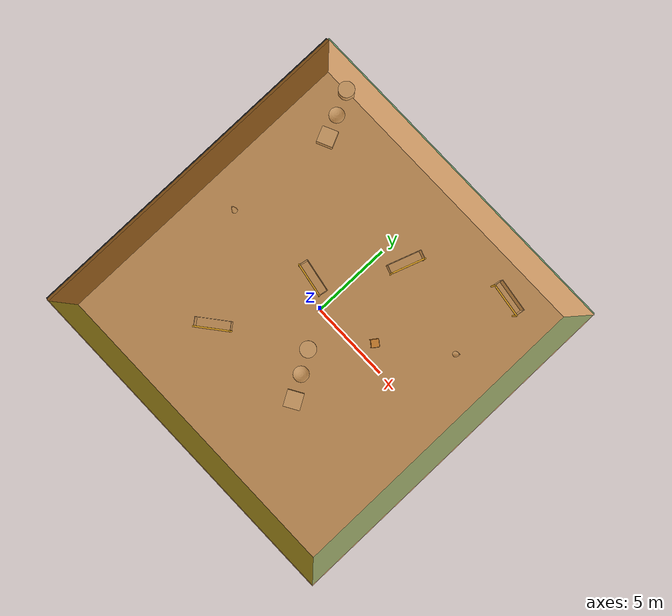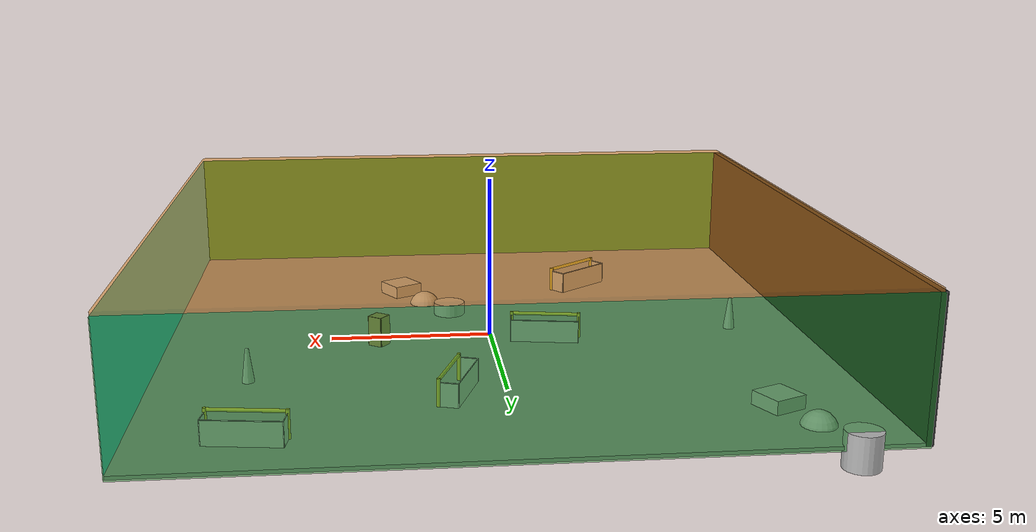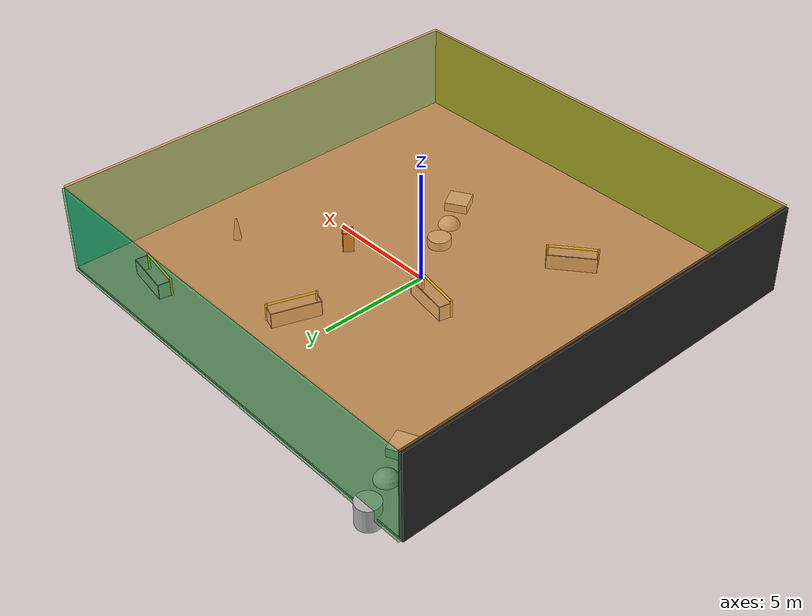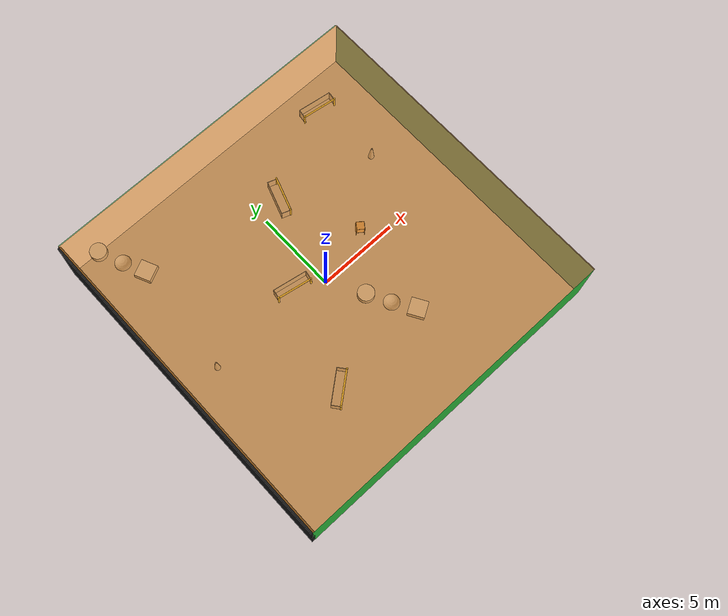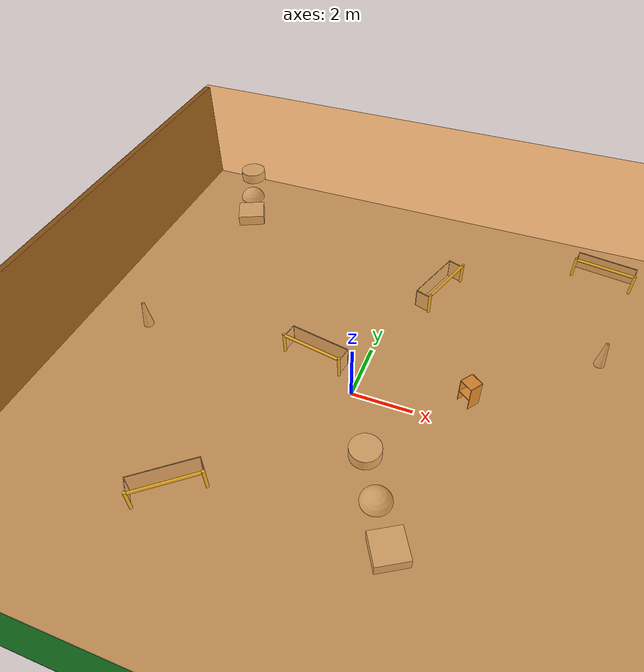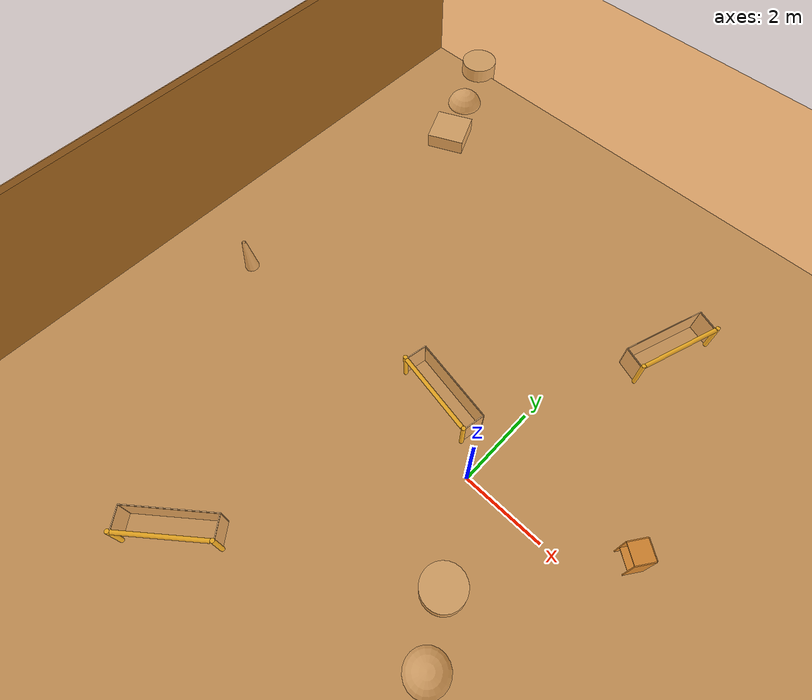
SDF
<sdf version="1.4">
 <world name="default">
  <physics type="ode">
   <max_step_size>0.001</max_step_size>
   <real_time_factor>1</real_time_factor>
   <real_time_update_rate>1000</real_time_update_rate>
   <gravity>0 0 -9.8</gravity>
  </physics>
  <scene><ambient>0.4 0.4 0.4 1</ambient><background>0.7 0.7 0.7 1</background><shadows>1</shadows></scene>
  <model name="Surrounding">
   <static>1</static>
   <link name="Ceiling">
    <collision name="Ceiling_Collision"><geometry><box><size>20 20 0.1</size></box></geometry></collision>
    <visual name="Ceiling_Visual">
     <geometry><box><size>20 20 0.1</size></box></geometry>
     <material>
      <script>
       <uri>file://media/materials/scripts/gazebo.material</uri>
       <name>Gazebo/OrangeTransparent</name>
      </script>
     </material>
    </visual>
    <pose>0 0 4.05 0 0 0</pose>
   </link>
   <link name="Wall_South">
    <collision name="Wall_South_Collision">
     <geometry><box><size>20 0 4</size></box></geometry>
     <pose>0 0 2 0 -0 0</pose>
    </collision>
    <visual name="Wall_South_Visual">
     <pose>0 0 2 0 -0 0</pose>
     <geometry><box><size>20 0 4</size></box></geometry>
     <material>
      <script><uri>file://media/materials/scripts/gazebo.material</uri><name>Gazebo/Green</name></script>
     </material>
    </visual>
    <velocity_decay><linear>0</linear><angular>0</angular></velocity_decay>
    <pose>0 -10 0 0 -0 0</pose>
   </link>
   <link name="Wall_East">
    <collision name="Wall_21_Collision">
     <geometry><box><size>20 0 4</size></box></geometry>
     <pose>0 0 2 0 -0 0</pose>
    </collision>
    <visual name="Wall_21_Visual">
     <pose>0 0 2 0 -0 0</pose>
     <geometry><box><size>20 0 4</size></box></geometry>
     <material>
      <script>
       <uri>file://media/materials/scripts/gazebo.material</uri>
       <name>Gazebo/TurquoiseGlowOutline</name>
      </script>
     </material>
    </visual>
    <velocity_decay><linear>0</linear><angular>0</angular></velocity_decay>
    <pose>10 0 0 0 -0 1.5708</pose>
   </link>
   <link name="Wall_North">
    <collision name="Wall_22_Collision">
     <geometry><box><size>20 0.2 4</size></box></geometry>
     <pose>0 0 2 0 -0 0</pose>
    </collision>
    <visual name="Wall_22_Visual">
     <pose>0 0 2 0 -0 0</pose>
     <geometry><box><size>20 0.2 4</size></box></geometry>
     <material>
      <script><uri>file://media/materials/scripts/gazebo.material</uri><name>Gazebo/GreenTransparent</name></script>
     </material>
    </visual>
    <velocity_decay><linear>0</linear><angular>0</angular></velocity_decay>
    <pose>0 10 0 0 -0 0</pose>
   </link>
   <link name="Wall_West">
    <collision name="Wall_23_Collision">
     <geometry><box><size>20 0.2 4</size></box></geometry>
     <pose>0 0 2 0 -0 0</pose>
    </collision>
    <visual name="Wall_23_Visual">
     <pose>0 0 2 0 -0 0</pose>
     <geometry><box><size>20 0.2 4</size></box></geometry>
     <material>
      <script><uri>file://media/materials/scripts/gazebo.material</uri><name>Gazebo/Black</name></script>
     </material>
    </visual>
    <velocity_decay><linear>0</linear><angular>0</angular></velocity_decay>
    <pose>-10 0 0 0 0 -1.5708</pose>
   </link>
   <link name="Ground_link">
    <collision name="collision">
     <pose>0 0 .05 0 -0 0</pose>
     <geometry><box><size>20 20 0.1</size></box></geometry>
    </collision>
    <visual name="visual">
     <pose>0 0 .05 0 -0 0</pose>
     <geometry><box><size>20 20 0.1</size></box></geometry>
     <material>
      <script><uri>file://media/materials/scripts/gazebo.material</uri><name>Gazebo/Grey</name></script>
     </material>
    </visual>
   </link>
   <static>1</static>
  </model>
  <spherical_coordinates>
   <surface_model>EARTH_WGS84</surface_model>
   <latitude_deg>0</latitude_deg>
   <longitude_deg>0</longitude_deg>
   <elevation>0</elevation>
   <heading_deg>0</heading_deg>
  </spherical_coordinates>
  <light name="lightball_0" type="diffuse">
   <diffuse>0.8 0.8 0.8 1</diffuse>
   <specular>0.2 0.2 0.2 1</specular>
   <attenuation>
    <range>100</range>
    <constant>0.7</constant>
    <linear>0.01</linear>
    <quadratic>0.001</quadratic>
   </attenuation>
   <direction>-0.5 0.1 -0.9</direction>
   <pose>-5.15427149855 0.783007243222 2.64606237204 0 0 0</pose>
  </light>
  <light name="lightball_1" type="diffuse">
   <diffuse>0.8 0.8 0.8 1</diffuse>
   <specular>0.2 0.2 0.2 1</specular>
   <attenuation>
    <range>100</range>
    <constant>0.7</constant>
    <linear>0.01</linear>
    <quadratic>0.001</quadratic>
   </attenuation>
   <direction>-0.5 0.1 -0.9</direction>
   <pose>5.03001257521 1.97703405337 1.89163323363 0 0 0</pose>
  </light>
  <include>
   <uri>model://construction_cone</uri>
   <pose>-7.67934652258 0.370680376103 0 0 0 0.679798559605</pose>
  </include>
  <include>
   <uri>model://textured_shapes</uri>
   <pose>-7.67203705195 8.59558673347 0 0 0 0.431972088999</pose>
  </include>
  <include>
   <uri>model://robocup_3Dsim_goal</uri>
   <pose>-3.46225033624 -5.23286526392 0 0 0 2.24482969159</pose>
  </include>
  <include>
   <uri>model://robocup_3Dsim_goal</uri>
   <pose>-1.66747315827 0.703136083827 0 0 0 1.39178311037</pose>
  </include>
  <include>
   <uri>model://textured_shapes</uri>
   <pose>1.92894667329 -3.34721665666 0 0 0 0.535525591612</pose>
  </include>
  <include>
   <uri>model://robocup_3Dsim_goal</uri>
   <pose>1.64948065237 5.36850000156 0 0 0 2.80754054784</pose>
  </include>
  <include><uri>model://cabinet</uri><pose>3.51524515372 0.939526564925 0 0 0 0.943822887712</pose></include>
  <include>
   <uri>model://construction_cone</uri>
   <pose>7.23067843594 3.9432200789 0 0 0 0.5931486725</pose>
  </include>
  <include>
   <uri>model://robocup_3Dsim_goal</uri>
   <pose>6.87906698325 8.03130607498 0 0 0 1.42501781149</pose>
  </include>
 </world>
</sdf>

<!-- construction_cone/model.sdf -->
<sdf version="1.5">
  <model name="Construction Cone">
    <link name="link">
      <collision name="collision">
        <geometry>
          <mesh>
            <scale>10 10 10</scale>
            <uri>file://isr-testbed/construction_cone/meshes/construction_cone.dae</uri>
          </mesh>
        </geometry>
      </collision>
      <visual name="visual">
        <geometry>
          <mesh>
            <scale>10 10 10</scale>
            <uri>file://isr-testbed/construction_cone/meshes/construction_cone.dae</uri>
          </mesh>
        </geometry>
      </visual>
    </link>
  </model>
</sdf>

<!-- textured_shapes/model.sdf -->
<sdf version="1.6">
  <model name="textured_shapes">
    <pose>0 0 0.5 0 0 0</pose>
    <link name="box">
      <pose>0 -1.5 0 0 0 0</pose>
      <collision name="collision">
        <geometry>
          <box>
            <size>1 1 1</size>
          </box>
        </geometry>
      </collision>
      <visual name="visual">
        <geometry>
          <box>
            <size>1 1 1</size>
          </box>
        </geometry>
        <material>
          <script>
            <uri>model://../model_source/models/textured_shapes/materials/scripts</uri>
            <uri>model://../model_source/models/textured_shapes/materials/textures</uri>
            <name>TexturedShape/Squares</name>
          </script>
        </material>
      </visual>
    </link>
    <link name="sphere">
      <collision name="collision">
        <geometry>
          <sphere>
            <radius>0.5</radius>
          </sphere>
        </geometry>
      </collision>
      <visual name="visual">
        <geometry>
          <sphere>
            <radius>0.5</radius>
          </sphere>
        </geometry>
        <material>
          <script>
            <uri>model://../model_source/models/textured_shapes/materials/scripts</uri>
            <uri>model://../model_source/models/textured_shapes/materials/textures</uri>
            <name>TexturedShape/Squares</name>
          </script>
        </material>
      </visual>
    </link>
    <link name="cylinder">
      <pose>0 1.5 0 0 0 0</pose>
      <collision name="collision">
        <geometry>
          <cylinder>
            <radius>0.5</radius>
            <length>1</length>
          </cylinder>
        </geometry>
      </collision>
      <visual name="visual">
        <geometry>
          <cylinder>
            <radius>0.5</radius>
            <length>1</length>
          </cylinder>
        </geometry>
        <material>
          <script>
            <uri>model://../model_source/models/textured_shapes/materials/scripts</uri>
            <uri>model://../model_source/models/textured_shapes/materials/textures</uri>
            <name>TexturedShape/Squares</name>
          </script>
        </material>
      </visual>
    </link>
  </model>
</sdf>

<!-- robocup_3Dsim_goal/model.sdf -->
<sdf version="1.5">
  <model name="robocup_3d_goal">
    <static>true</static>
    <link name="left_post">
      <pose>0 1.05 0.45 0 0 0</pose>
      <collision name="collision">
        <geometry>
          <cylinder>
            <radius>0.05</radius>
            <length>0.9</length>
          </cylinder>
        </geometry>
      </collision>
      <visual name="visual">
        <geometry>
          <cylinder>
            <radius>0.05</radius>
            <length>0.9</length>
          </cylinder>
        </geometry>
        <material>
          <script>
            <uri>file://media/materials/scripts/gazebo.material</uri>
            <name>Gazebo/ZincYellow</name>
          </script>
        </material>
      </visual>
    </link>
    <link name="left_support_horiz_lower">
      <pose>0.30 1.05 0.01 0 0 0</pose>
      <collision name="collision">
        <geometry>
          <box>
            <size>0.50 0.02 0.02</size>
          </box>
        </geometry>
      </collision>
      <visual name="visual">
        <geometry>
          <box>
            <size>0.50 0.02 0.02</size>
          </box>
        </geometry>
        <material>
          <script>
            <uri>file://media/materials/scripts/gazebo.material</uri>
            <name>Gazebo/White</name>
          </script>
        </material>
      </visual>
    </link>
    <link name="left_support_horiz_upper">
      <pose>0.30 1.05 0.79 0 0 0</pose>
      <collision name="collision">
        <geometry>
          <box>
            <size>0.50 0.02 0.02</size>
          </box>
        </geometry>
      </collision>
      <visual name="visual">
        <geometry>
          <box>
            <size>0.50 0.02 0.02</size>
          </box>
        </geometry>
        <material>
          <script>
            <uri>file://media/materials/scripts/gazebo.material</uri>
            <name>Gazebo/White</name>
          </script>
        </material>
      </visual>
    </link>
    <link name="left_support_vertical">
      <pose>0.56 1.05 0.4 0 1.5708 0</pose>
      <collision name="collision">
        <geometry>
          <box>
            <size>0.80 0.02 0.02</size>
          </box>
        </geometry>
      </collision>
      <visual name="visual">
        <geometry>
          <box>
            <size>0.80 0.02 0.02</size>
          </box>
        </geometry>
        <material>
          <script>
            <uri>file://media/materials/scripts/gazebo.material</uri>
            <name>Gazebo/White</name>
          </script>
        </material>
      </visual>
    </link>
    <link name="right_support_horiz_lower">
      <pose>0.30 -1.05 0.01 0 0 0</pose>
      <collision name="collision">
        <geometry>
          <box>
            <size>0.50 0.02 0.02</size>
          </box>
        </geometry>
      </collision>
      <visual name="visual">
        <geometry>
          <box>
            <size>0.50 0.02 0.02</size>
          </box>
        </geometry>
        <material>
          <script>
            <uri>file://media/materials/scripts/gazebo.material</uri>
            <name>Gazebo/White</name>
          </script>
        </material>
      </visual>
    </link>
    <link name="right_support_horiz_upper">
      <pose>0.30 -1.05 0.79 0 0 0</pose>
      <collision name="collision">
        <geometry>
          <box>
            <size>0.50 0.02 0.02</size>
          </box>
        </geometry>
      </collision>
      <visual name="visual">
        <geometry>
          <box>
            <size>0.50 0.02 0.02</size>
          </box>
        </geometry>
        <material>
          <script>
            <uri>file://media/materials/scripts/gazebo.material</uri>
            <name>Gazebo/White</name>
          </script>
        </material>
      </visual>
    </link>
    <link name="right_support_vertical">
      <pose>0.56 -1.05 0.4 0 1.5708 0</pose>
      <collision name="collision">
        <geometry>
          <box>
            <size>0.80 0.02 0.02</size>
          </box>
        </geometry>
      </collision>
      <visual name="visual">
        <geometry>
          <box>
            <size>0.80 0.02 0.02</size>
          </box>
        </geometry>
        <material>
          <script>
            <uri>file://media/materials/scripts/gazebo.material</uri>
            <name>Gazebo/White</name>
          </script>
        </material>
      </visual>
    </link>
    <link name="center_support_horiz_lower">
      <pose>0.56 0 0.01 0 1.5708 0</pose>
      <collision name="collision">
        <geometry>
          <box>
            <size>0.02 2.08 0.02</size>
          </box>
        </geometry>
      </collision>
      <visual name="visual">
        <geometry>
          <box>
            <size>0.02 2.08 0.02</size>
          </box>
        </geometry>
        <material>
          <script>
            <uri>file://media/materials/scripts/gazebo.material</uri>
            <name>Gazebo/White</name>
          </script>
        </material>
      </visual>
    </link>
    <link name="center_support_horiz_upper">
      <pose>0.56 0 0.79 0 1.5708 0</pose>
      <collision name="collision">
        <geometry>
          <box>
            <size>0.02 2.08 0.02</size>
          </box>
        </geometry>
      </collision>
      <visual name="visual">
        <geometry>
          <box>
            <size>0.02 2.08 0.02</size>
          </box>
        </geometry>
        <material>
          <script>
            <uri>file://media/materials/scripts/gazebo.material</uri>
            <name>Gazebo/White</name>
          </script>
        </material>
      </visual>
    </link>
    <link name="right_post">
      <pose>0 -1.05 0.45 0 0 0</pose>
      <collision name="collision">
        <geometry>
          <cylinder>
            <radius>0.05</radius>
            <length>0.9</length>
          </cylinder>
        </geometry>
      </collision>
      <visual name="visual">
        <geometry>
          <cylinder>
            <radius>0.05</radius>
            <length>0.9</length>
          </cylinder>
        </geometry>
        <material>
          <script>
            <uri>file://media/materials/scripts/gazebo.material</uri>
            <name>Gazebo/ZincYellow</name>
          </script>
        </material>
      </visual>
    </link>
    <link name="crossbar">
      <pose>0 0 0.85 1.57 1.57 0</pose>
      <collision name="collision">
        <geometry>
          <cylinder>
            <radius>0.05</radius>
            <length>2.0</length>
          </cylinder>
        </geometry>
      </collision>
      <visual name="visual">
        <geometry>
          <cylinder>
            <radius>0.05</radius>
            <length>2.0</length>
          </cylinder>
        </geometry>
        <material>
          <script>
            <uri>file://media/materials/scripts/gazebo.material</uri>
            <name>Gazebo/ZincYellow</name>
          </script>
        </material>
      </visual>
    </link>
    <link name="center_net">
      <pose>0.56 0 0.40 0 0 0</pose>
      <collision name="collision">
        <geometry>
          <box>
            <size>0.01 2.1 0.80</size>
          </box>
        </geometry>
      </collision>
      <visual name="visual">
        <geometry>
          <box>
            <size>0.01 2.1 0.80</size>
          </box>
        </geometry>
        <material>
          <script>
            <uri>model://../model_source/models/robocup09_spl_field/materials/scripts/</uri>
            <uri>model://../model_source/models/robocup09_spl_field/materials/textures/</uri>
            <name>RoboCup/Net</name>
          </script>
        </material>
      </visual>
    </link>
    <link name="left_net">
      <pose>0.30 1.05 0.40 0 0 0</pose>
      <collision name="collision">
        <geometry>
          <box>
            <size>0.50 0.01 0.76</size>
          </box>
        </geometry>
      </collision>
      <visual name="visual">
        <geometry>
          <box>
            <size>0.50 0.01 0.76</size>
          </box>
        </geometry>
        <material>
          <script>
            <uri>model://../model_source/models/robocup09_spl_field/materials/scripts/</uri>
            <uri>model://../model_source/models/robocup09_spl_field/materials/textures/</uri>
            <name>RoboCup/Net</name>
          </script>
        </material>
      </visual>
    </link>
    <link name="right_net">
      <pose>0.30 -1.05 0.40 0 0 0</pose>
      <collision name="collision">
        <geometry>
          <box>
            <size>0.50 0.01 0.76</size>
          </box>
        </geometry>
      </collision>
      <visual name="visual">
        <geometry>
          <box>
            <size>0.50 0.01 0.76</size>
          </box>
        </geometry>
        <material>
          <script>
            <uri>model://../model_source/models/robocup09_spl_field/materials/scripts/</uri>
            <uri>model://../model_source/models/robocup09_spl_field/materials/textures/</uri>
            <name>RoboCup/Net</name>
          </script>
        </material>
      </visual>
    </link>
  </model>
</sdf>

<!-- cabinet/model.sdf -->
<sdf version="1.5">
  <model name="cabinet">
    <static>true</static>
    <link name="cabinet_bottom_plate">
      <inertial>
        <pose>0 0 -1 0 0 0</pose>
        <inertia>
          <ixx>2.050000</ixx>
          <ixy>0</ixy>
          <ixz>0</ixz>
          <iyy>2.050000</iyy>
          <iyz>0</iyz>
          <izz>2.050000</izz>
        </inertia>
        <mass>25.000000</mass>
      </inertial>
      <collision name="cabinet_bottom_plate_geom">
        <pose>0 0 0.010000 0 0 0</pose>
        <geometry>
          <box>
            <size>0.450000 0.450000 0.020000</size>
          </box>
        </geometry>
      </collision>
      <visual name="cabinet_bottom_plate_geom_visual">
        <pose>0 0 0.010000 0 0 0</pose>
        <geometry>
          <box>
            <size>0.450000 0.450000 0.020000</size>
          </box>
        </geometry>
        <material>
          <script>
            <uri>model://media/materials/scripts/gazebo.material</uri>
            <name>Gazebo/Wood</name>
          </script>
        </material>
      </visual>
      <collision name="cabinet_bottom_plate_geom_cabinet_back_plate">
        <pose>0.235000 0 0.510000 0 0 0</pose>
        <geometry>
          <box>
            <size>0.020000 0.450000 1.020000</size>
          </box>
        </geometry>
      </collision>
      <visual name="cabinet_bottom_plate_geom_cabinet_back_plate_visual">
        <pose>0.235000 0 0.510000 0 0 0</pose>
        <geometry>
          <box>
            <size>0.020000 0.450000 1.020000</size>
          </box>
        </geometry>
        <material>
          <script>
            <uri>model://media/materials/scripts/gazebo.material</uri>
            <name>Gazebo/Wood</name>
          </script>
        </material>
      </visual>
      <collision name="cabinet_bottom_plate_geom_cabinet_left_plate">
        <pose>0 0.235000 0.510000 0 0 0</pose>
        <geometry>
          <box>
            <size>0.450000 0.020000 1.020000</size>
          </box>
        </geometry>
      </collision>
      <visual name="cabinet_bottom_plate_geom_cabinet_left_plate_visual">
        <pose>0 0.235000 0.510000 0 0 0</pose>
        <geometry>
          <box>
            <size>0.450000 0.020000 1.020000</size>
          </box>
        </geometry>
        <material>
          <script>
            <uri>model://media/materials/scripts/gazebo.material</uri>
            <name>Gazebo/Wood</name>
          </script>
        </material>
      </visual>
      <collision name="cabinet_bottom_plate_geom_cabinet_middle_plate">
        <pose>0 0 0.510000 0 0 0</pose>
        <geometry>
          <box>
            <size>0.450000 0.450000 0.020000</size>
          </box>
        </geometry>
      </collision>
      <visual name="cabinet_bottom_plate_geom_cabinet_middle_plate_visual">
        <pose>0 0 0.510000 0 0 0</pose>
        <geometry>
          <box>
            <size>0.450000 0.450000 0.020000</size>
          </box>
        </geometry>
        <material>
          <script>
            <uri>model://media/materials/scripts/gazebo.material</uri>
            <name>Gazebo/Wood</name>
          </script>
        </material>
      </visual>
      <collision name="cabinet_bottom_plate_geom_cabinet_right_plate">
        <pose>0 -0.235000 0.510000 0 0 0</pose>
        <geometry>
          <box>
            <size>0.450000 0.020000 1.020000</size>
          </box>
        </geometry>
      </collision>
      <visual name="cabinet_bottom_plate_geom_cabinet_right_plate_visual">
        <pose>0 -0.235000 0.510000 0 0 0</pose>
        <geometry>
          <box>
            <size>0.450000 0.020000 1.020000</size>
          </box>
        </geometry>
        <material>
          <script>
            <uri>model://media/materials/scripts/gazebo.material</uri>
            <name>Gazebo/Wood</name>
          </script>
        </material>
      </visual>
      <collision name="cabinet_bottom_plate_geom_cabinet_top_plate">
        <pose>0 0 1.010000 0 0 0</pose>
        <geometry>
          <box>
            <size>0.450000 0.450000 0.020000</size>
          </box>
        </geometry>
      </collision>
      <visual name="cabinet_bottom_plate_geom_cabinet_top_plate_visual">
        <pose>0 0 1.010000 0 0 0</pose>
        <geometry>
          <box>
            <size>0.450000 0.450000 0.020000</size>
          </box>
        </geometry>
        <material>
          <script>
            <uri>model://media/materials/scripts/gazebo.material</uri>
            <name>Gazebo/Wood</name>
          </script>
        </material>
      </visual>
    </link>
  </model>
</sdf>
